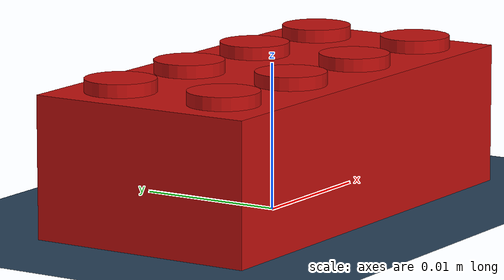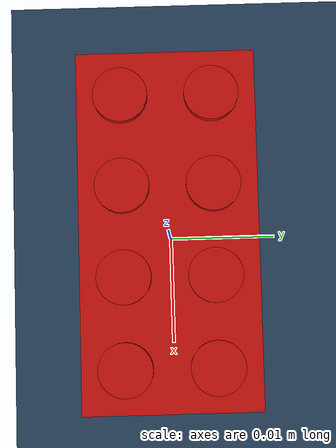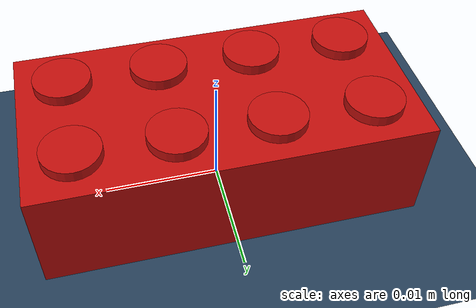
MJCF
<mujoco model="lego_2x4_scene">
  <!--
    Standalone viewer scene for the 2x4 LEGO brick asset.
    Quick look:
      python -m mujoco.viewer --mjcf assets/lego/scene_lego_2x4.xml
  -->
  <option timestep="0.002" gravity="0 0 -9.81"/>

  <visual>
    <headlight ambient="0.4 0.4 0.4" diffuse="0.6 0.6 0.6" specular="0.1 0.1 0.1"/>
  </visual>

  <asset>
    <texture type="skybox" builtin="gradient" rgb1="0.3 0.5 0.7" rgb2="0 0 0" width="512" height="512"/>
    <texture type="2d" name="groundplane" builtin="checker" mark="edge" rgb1="0.2 0.3 0.4" rgb2="0.1 0.2 0.3"
              markrgb="0.8 0.8 0.8" width="300" height="300"/>
    <material name="groundplane" texture="groundplane" texuniform="true" texrepeat="5 5" reflectance="0.1"/>
  </asset>

  <worldbody>
    <light pos="0.2 0.2 0.3" dir="-0.5 -0.5 -1" diffuse="0.8 0.8 0.8"/>
    <geom name="floor" type="plane" size="0.5 0.5 0.05" material="groundplane"/>
  </worldbody>

  <include file="lego_2x4.xml"/>

  <keyframe>
    <key name="dropped" qpos="0 0 0.05 1 0 0 0"/>
  </keyframe>
</mujoco>

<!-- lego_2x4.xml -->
<mujoco model="lego_2x4">
  <compiler angle="radian"/>

  <default>
    <default class="lego_2x4">
      <!-- density chosen (not ABS's true 1050 kg/m3) so the solid primitive body
           matches a real brick's ~2.5g mass; a real brick is hollow underneath. -->
      <geom type="box" material="lego_red" density="500" friction="0.9 0.02 0.001"/>
      <default class="lego_2x4/stud">
        <geom type="cylinder"/>
      </default>
    </default>
  </default>

  <asset>
    <material name="lego_red" rgba="0.77 0.06 0.05 1"/>
  </asset>

  <worldbody>
    <body name="lego_2x4" childclass="lego_2x4">
      <freejoint name="lego_2x4_freejoint"/>

      <!-- brick body: 4 studs long (x) x 2 studs wide (y) x 9.6mm tall (z) -->
      <!-- mass/inertia are left to MuJoCo, computed from geom volume x density below -->
      <geom name="lego_2x4_body" size="0.0159 0.0079 0.0048" pos="0 0 0.0048"/>

      <!-- 8 studs on the 8mm grid, top face at z = 0.0096 -->
      <geom class="lego_2x4/stud" name="lego_2x4_stud_00" size="0.0024 0.00085" pos="-0.012 -0.004 0.00965"/>
      <geom class="lego_2x4/stud" name="lego_2x4_stud_01" size="0.0024 0.00085" pos="-0.012  0.004 0.00965"/>
      <geom class="lego_2x4/stud" name="lego_2x4_stud_10" size="0.0024 0.00085" pos="-0.004 -0.004 0.00965"/>
      <geom class="lego_2x4/stud" name="lego_2x4_stud_11" size="0.0024 0.00085" pos="-0.004  0.004 0.00965"/>
      <geom class="lego_2x4/stud" name="lego_2x4_stud_20" size="0.0024 0.00085" pos=" 0.004 -0.004 0.00965"/>
      <geom class="lego_2x4/stud" name="lego_2x4_stud_21" size="0.0024 0.00085" pos=" 0.004  0.004 0.00965"/>
      <geom class="lego_2x4/stud" name="lego_2x4_stud_30" size="0.0024 0.00085" pos=" 0.012 -0.004 0.00965"/>
      <geom class="lego_2x4/stud" name="lego_2x4_stud_31" size="0.0024 0.00085" pos=" 0.012  0.004 0.00965"/>
    </body>
  </worldbody>
</mujoco>
